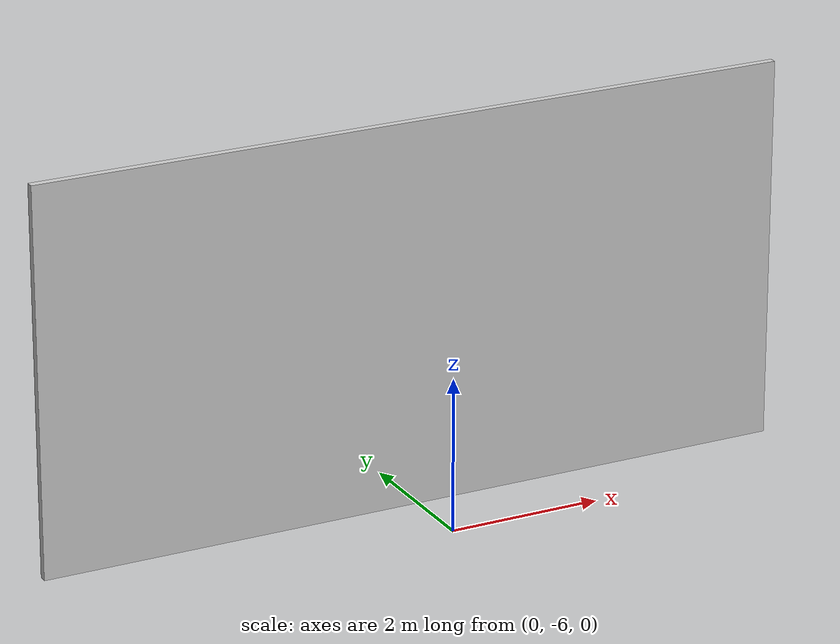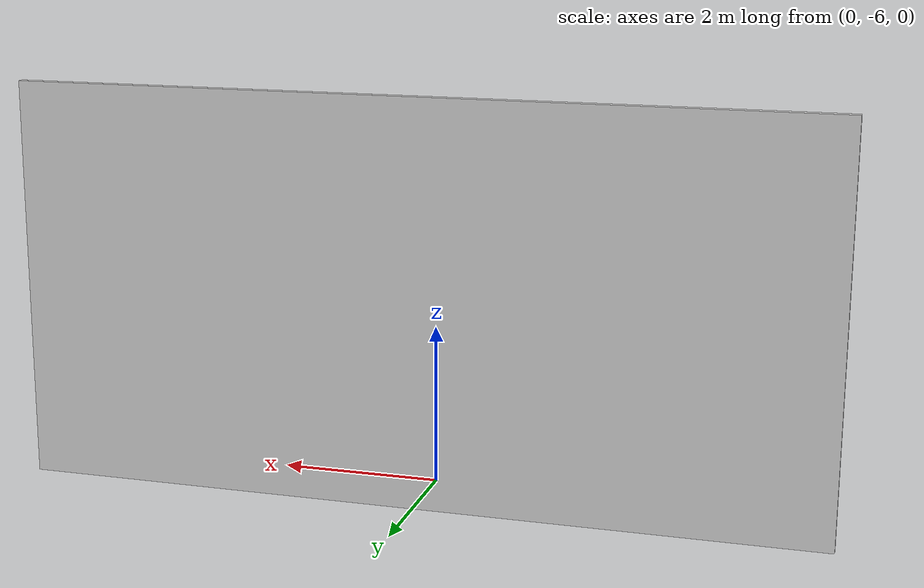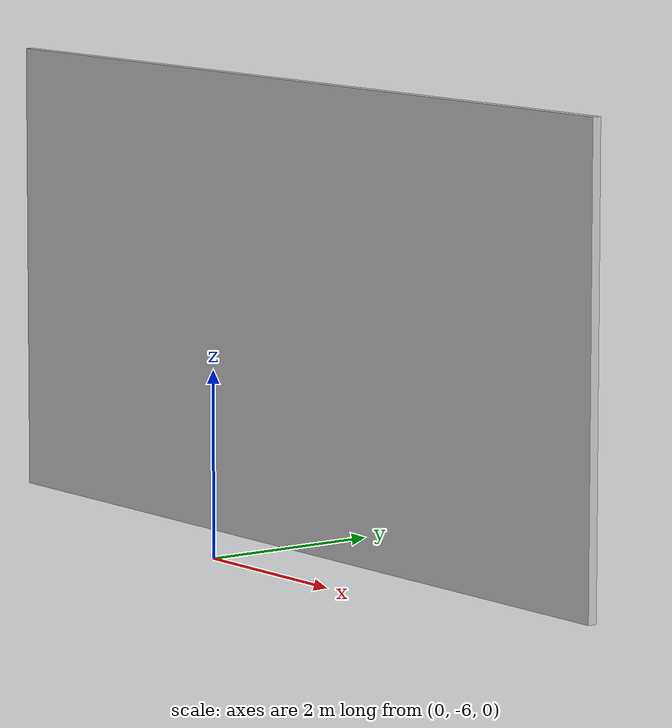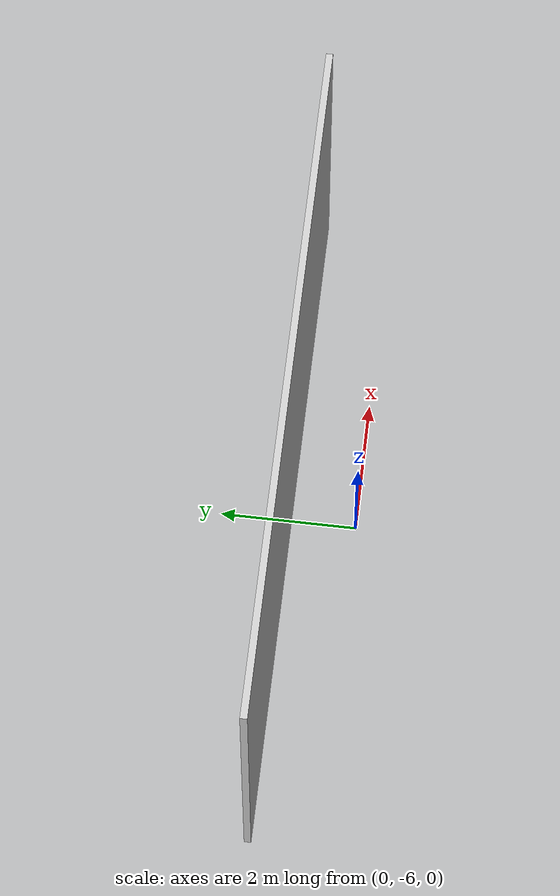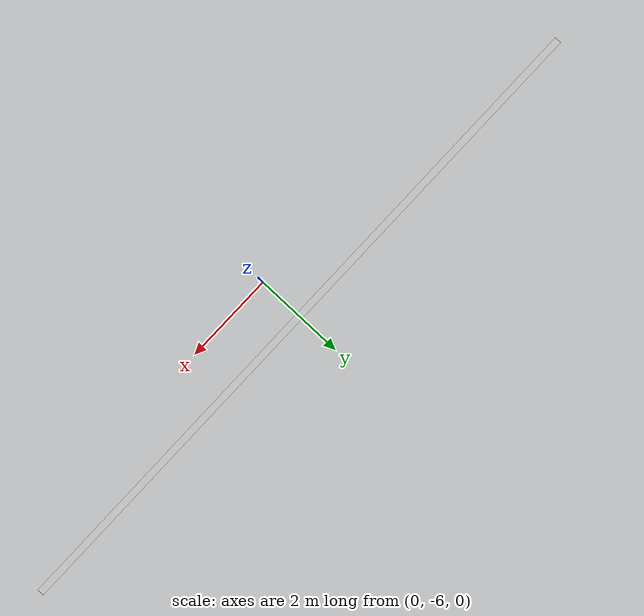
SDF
<sdf version='1.7'>
    <!-- east wall -->
    <model name='east_wall'>
        <static>true</static>
        <link name='link'>
            <collision name='collision'>
                <geometry>
                    <box>
                        <size>10 0.1 5</size>
                    </box>
                </geometry>
            </collision>
            <visual name='visual'>
                <geometry>
                    <box>
                        <size>10 0.1 5</size>
                    </box>
                </geometry>
                <material>
                    <diffuse>0.8 0.8 0.8 1</diffuse>
                    <script>
                        <uri>model://walls/wall1.material</uri>
                        <name>WallPaper1</name>
                    </script>
                </material>
            </visual>
        </link>
        <pose>0 -5 2.5 0 -0 0</pose>
    </model>
</sdf>
